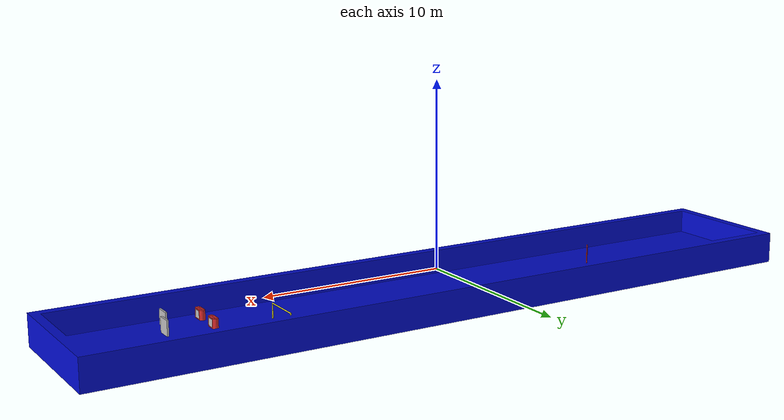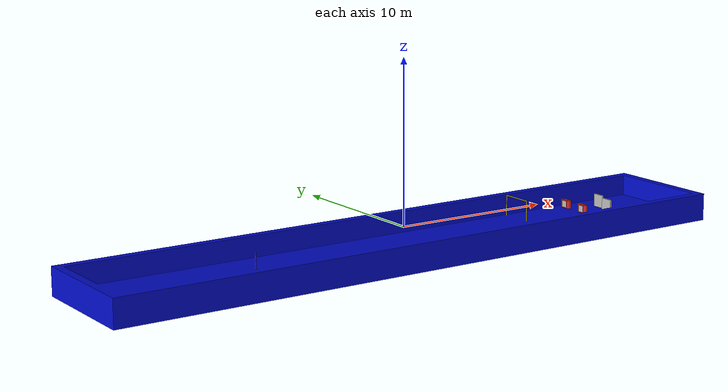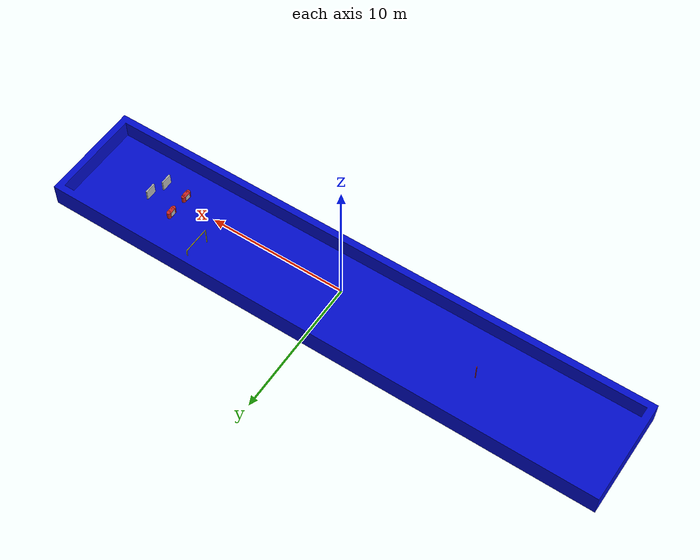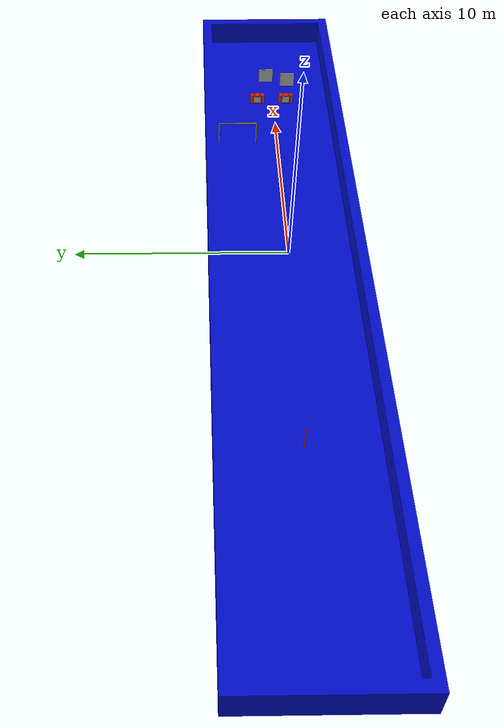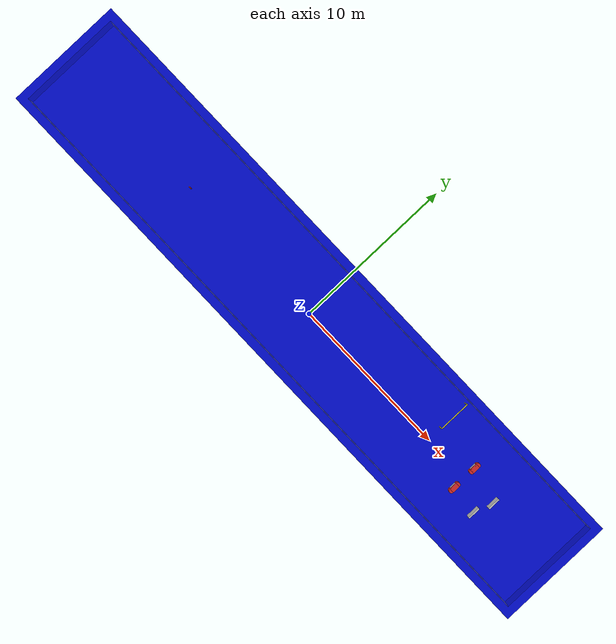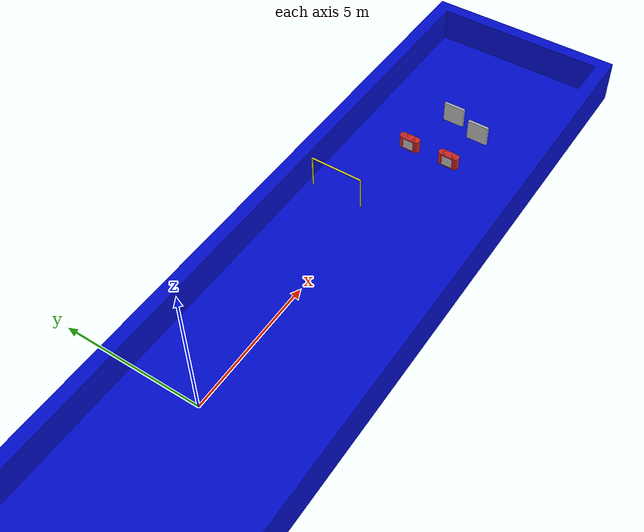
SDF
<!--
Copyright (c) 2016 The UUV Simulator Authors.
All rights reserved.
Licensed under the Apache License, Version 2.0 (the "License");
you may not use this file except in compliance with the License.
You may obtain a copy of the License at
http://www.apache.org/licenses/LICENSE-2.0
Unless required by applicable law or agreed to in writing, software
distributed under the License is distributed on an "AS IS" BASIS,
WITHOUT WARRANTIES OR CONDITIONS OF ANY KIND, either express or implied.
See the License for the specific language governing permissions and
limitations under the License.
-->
<sdf version="1.5">
 <world name="empty_underwater">
  <physics name="default_physics" default="true" type="ode">
   <max_step_size>0.002</max_step_size>
   <real_time_factor>1</real_time_factor>
   <real_time_update_rate>500</real_time_update_rate>
   <ode><solver><type>quick</type><iters>50</iters><sor>0.5</sor></solver></ode>
  </physics>
  <scene>
   <ambient>0.01 0.01 0.01 1.0</ambient>
   <sky><clouds><speed>12</speed></clouds></sky>
   <shadows>1</shadows>
   <fog>
    <color>0.0039 0.26 0.415 1.0</color>
    <type>linear</type>
    <density>0.4</density>
    <start>10</start>
    <end>40</end>
   </fog>
  </scene>
  <spherical_coordinates>
   <latitude_deg>56.71897669633431</latitude_deg>
   <longitude_deg>3.515625</longitude_deg>
  </spherical_coordinates>
  <light type="directional" name="sun1">
   <pose>10 0 10 0 0 0</pose>
   <diffuse>0.25 0.25 0.45 1</diffuse>
   <specular>0.2 0.2 0.2 1</specular>
   <attenuation>
    <range>1000</range>
    <constant>0.9</constant>
    <linear>0.01</linear>
    <quadratic>0.001</quadratic>
   </attenuation>
   <direction>-0.5 0.1 -0.9</direction>
  </light>
  <light type="directional" name="sun2">
   <pose>-10 0 10 0 0 0</pose>
   <diffuse>0.25 0.35 0.45 1</diffuse>
   <specular>0.2 0.2 0.2 1</specular>
   <attenuation>
    <range>1000</range>
    <constant>0.9</constant>
    <linear>0.01</linear>
    <quadratic>0.001</quadratic>
   </attenuation>
   <direction>0.5 0.1 0.9</direction>
  </light>
  <light type="directional" name="sun3">
   <pose>-25 0 5 0 0 0</pose>
   <diffuse>0.25 0.25 0.45 1</diffuse>
   <specular>0.2 0.2 0.2 1</specular>
   <attenuation>
    <range>20</range>
    <constant>0.9</constant>
    <linear>0.01</linear>
    <quadratic>0.001</quadratic>
   </attenuation>
   <direction>0.5 0.1 0.9</direction>
  </light>
  <include><uri>model://cybernetics_pool</uri></include>
  <include><name>gate_side_a</name><pose>10.0 2.0 0.0 0 0 1.57</pose><uri>model://2018/gate</uri></include>
  <include>
   <name>torpedo_targets</name>
   <pose>15.0 -1.8 -0.5 0 0 1.57</pose>
   <uri>model://2018/torpedo_targets</uri>
  </include>
  <include>
   <name>buoy_tommy_gun</name>
   <pose>13.0 -0.8 -0.5 0 0 1.57</pose>
   <uri>model://2018/buoy_tommy_gun</uri>
  </include>
  <include>
   <name>buoy_badge</name>
   <pose>13.0 0.8 -0.5 0 0 1.57</pose>
   <uri>model://2018/buoy_badge</uri>
  </include>
  <include><name>buoys</name><pose>-10.0 0.0 0.0 0 0 0</pose><uri>model://buoys</uri></include>
  <plugin name="underwater_current_plugin" filename="libuuv_underwater_current_ros_plugin.so">
   <namespace>hydrodynamics</namespace>
   <constant_current>
    <topic>current_velocity</topic>
    <velocity><mean>0</mean><min>0</min><max>5</max><mu>0.0</mu><noiseAmp>0.0</noiseAmp></velocity>
    <horizontal_angle>
     <mean>0</mean>
     <min>-3.141592653589793238</min>
     <max>3.141592653589793238</max>
     <mu>0.0</mu>
     <noiseAmp>0.0</noiseAmp>
    </horizontal_angle>
    <vertical_angle>
     <mean>0</mean>
     <min>-3.141592653589793238</min>
     <max>3.141592653589793238</max>
     <mu>0.0</mu>
     <noiseAmp>0.0</noiseAmp>
    </vertical_angle>
   </constant_current>
  </plugin>
  <plugin name="sc_interface" filename="libuuv_sc_ros_interface_plugin.so"/>
 </world>
</sdf>

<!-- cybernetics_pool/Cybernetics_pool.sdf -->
<sdf version='1.5'>

  <model name='transdec_pool'>
    <pose>0 0 0 0 0 0</pose>
    <self_collide> 0 </self_collide>
    <static> 1</static>

    <link name='pool'>
      <pose>0 0 0 0 0 0</pose>
      <visual name='pool_visual'>
        <geometry>
            <mesh><uri>file://cybernetics_pool/cybernetics_pool.dae</uri></mesh>
        </geometry>
        <material>
          <script>
            <uri>file://Media/materials/scripts/sand.material</uri>
            <name>UUVSimulator/SandAndStones</name>
          </script>
          <emissive>
            0.2 0.2 0.2 1.0
          </emissive>
        </material>
      </visual>
      <collision name='pool_collision'>
        <geometry>
            <mesh><uri>file://cybernetics_pool/cybernetics_pool.dae</uri></mesh>
        </geometry>
      </collision>
    </link>

  </model>
</sdf>

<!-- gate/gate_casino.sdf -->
<sdf version='1.5'>
<!--
     Written by Kristoffer Rakstad Solberg, Student
     Copyright (c) 2019 Manta AUV, Vortex NTNU.
     All rights reserved.
-->
  <model name='start_gate'>
    <pose> 0 0 0 0 0 0</pose>
    <self_collide> 0 </self_collide>
    <static>1</static>

    <link name='gate_top'>
      <pose> 0 0 0 0 1.5707 0</pose>
      <visual name='gate_top_vis'>
        <geometry>
          <cylinder>
            <radius>0.0300</radius>
            <length>2.0</length>
          </cylinder>
        </geometry>
        <material>
          <script>
            <uri>file://media/materials/scripts/gazebo.material</uri>
            <name>Gazebo/YellowGlow</name>
          </script>
        </material>
      </visual>
      <collision name='gate_top_collide'>
        <geometry>
          <cylinder>
            <radius>0.0300</radius>
            <length>2.0</length>
          </cylinder>
        </geometry>
      </collision>
    </link>

    <link name='gate_left'>
      <pose>-1.0 0 -0.75 0 0 0</pose>
      <visual name='gate_left_top'>
        <geometry>
          <cylinder>
            <radius>0.0300</radius>
            <length>1.5</length>
          </cylinder>
        </geometry>
        <material>
          <script>
            <uri>file://media/materials/scripts/gazebo.material</uri>
            <name>Gazebo/YellowGlow</name>
          </script>
        </material>
      </visual>
      <collision name='gate_left_collide'>
        <geometry>
          <cylinder>
            <radius>0.0300</radius>
            <length>1.5</length>
          </cylinder>
        </geometry>
      </collision>
    </link>

    <link name='gate_right'>
      <pose>1.0 0 -0.75 0 0 0</pose>
      <visual name='gate_right_top'>
        <geometry>
          <cylinder>
            <radius>0.0300</radius>
            <length>1.5</length>
          </cylinder>
        </geometry>
        <material>
          <script>
            <uri>file://media/materials/scripts/gazebo.material</uri>
            <name>Gazebo/YellowGlow</name>
          </script>
        </material>
      </visual>
      <collision name='gate_right_collide'>
        <geometry>
          <cylinder>
            <radius>0.0300</radius>
            <length>1.5</length>
          </cylinder>
        </geometry>
      </collision>
    </link>

  </model>
</sdf>

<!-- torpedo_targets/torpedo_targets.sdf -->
<sdf version='1.5'>

  <model name='torpedo_targets'>
    <pose>0 0 0 0 0 0</pose>
    <self_collide> 0 </self_collide>
    <static> 1</static>

    <link name='target_gman'>
      <pose>0.8 0.2 0 0 0 0</pose>
      <visual name='target_1'>
        <geometry>
          <box><size>0.8 0.1 0.8</size></box>
        </geometry>
        <material>
            <script>
            <uri>model://2018/torpedo_targets/materials/scripts</uri>
            <uri>model://2018/torpedo_targets/materials/textures</uri>
            <name>TexturedShape/gman</name>
          </script>
        </material>
      </visual>
      <collision name='target_1_collide'>
        <geometry>
          <box><size>0.8 0.1 0.8</size></box>
        </geometry>
      </collision>
    </link>

    <link name='target_bootlegger'>
      <pose>2 -0.2 0 0 0 0</pose>
      <visual name='target_1'>
        <geometry>
          <box><size>0.8 0.1 0.8</size></box>
        </geometry>
        <material>
            <script>
            <uri>model://2018/torpedo_targets/materials/scripts</uri>
            <uri>model://2018/torpedo_targets/materials/textures</uri>
            <name>TexturedShape/bootlegger</name>
          </script>
        </material>
      </visual>
      <collision name='target_1_collide'>
        <geometry>
          <box><size>0.8 0.1 0.8</size></box>
        </geometry>
      </collision>
    </link>
  </model>
</sdf>

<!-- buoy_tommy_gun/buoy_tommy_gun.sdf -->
<sdf version='1.5'>
<!--
     Written by Kristoffer Rakstad Solberg, Student
     Copyright (c) 2019 Manta AUV, Vortex NTNU.
     All rights reserved.
-->
  <model name='buoy_tommy_gate'>
    <pose> 0 0 0 0 0 0</pose>
    <self_collide> 0 </self_collide>
    <static>1</static>

    <link name='buoy_base'>
      <pose> 0 0 0 0 0 0</pose>
      <visual name='gate_mid_vis'>
        <geometry>
          <box>
            <size>0.5 0.3 0.5</size>
          </box>
        </geometry>
        <material>
          <script>
            <uri>file://media/materials/scripts/gazebo.material</uri>
            <name>Gazebo/Red</name>
          </script>
        </material>
      </visual>
      <collision name='buoy_collide'>
        <geometry>
          <box>
            <size>0.5 0.3 0.5</size>
          </box>
        </geometry>
      </collision>
    </link>

    <link name='buoy_side_left'>
      <pose> -0.25 0 0 0 0 0</pose>
      <visual name='gate_side_left_vis'>
        <geometry>
          <cylinder>
            <radius>0.15</radius>
            <length>0.5</length>
          </cylinder>
        </geometry>
        <material>
          <script>
            <uri>file://media/materials/scripts/gazebo.material</uri>
            <name>Gazebo/Red</name>
          </script>
        </material>
      </visual>
      <collision name='buoy_collide_side_left'>
        <geometry>
          <cylinder>
            <radius>0.15</radius>
            <length>0.5</length>
          </cylinder>
        </geometry>
      </collision>
    </link>

    <link name='buoy_side_right'>
      <pose> 0.25 0 0 0 0 0</pose>
      <visual name='gate_side_right_vis'>
        <geometry>
          <cylinder>
            <radius>0.15</radius>
            <length>0.5</length>
          </cylinder>
        </geometry>
        <material>
          <script>
            <uri>file://media/materials/scripts/gazebo.material</uri>
            <name>Gazebo/Red</name>
          </script>
        </material>
      </visual>
      <collision name='buoy_collide_side_right'>
        <geometry>
          <cylinder>
            <radius>0.15</radius>
            <length>0.5</length>
          </cylinder>
        </geometry>
      </collision>
    </link>

    <link name='box_tommy_gun'>
      <pose> 0 0.15 0 0 0 0</pose>
      <visual name='box_tommy_gun_vis'>
        <geometry>
          <box>
            <size>0.4 0.01 0.4</size>
          </box>
        </geometry>
        <material>
          <script>
            <uri>model://2018/buoy_tommy_gun/materials/scripts</uri>
            <uri>model://2018/buoy_tommy_gun/materials/textures</uri>
            <name>TexturedShape/tommy_gun</name>
          </script>
        </material>
      </visual>
    </link>

    <link name='box_tommy_gun2'>
      <pose> 0 -0.15 0 0 0 0</pose>
      <visual name='box_tommy_gun2_vis'>
        <geometry>
          <box>
            <size>0.4 0.01 0.4</size>
          </box>
        </geometry>
        <material>
          <script>
            <uri>model://2018/buoy_tommy_gun/materials/scripts</uri>
            <uri>model://2018/buoy_tommy_gun/materials/textures</uri>
            <name>TexturedShape/tommy_gun</name>
          </script>
        </material>
      </visual>
    </link>

  </model>
</sdf>

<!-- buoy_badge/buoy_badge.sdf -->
<sdf version='1.5'>
<!--
     Written by Kristoffer Rakstad Solberg, Student
     Copyright (c) 2019 Manta AUV, Vortex NTNU.
     All rights reserved.
-->
  <model name='buoy_badge'>
    <pose> 0 0 0 0 0 0</pose>
    <self_collide> 0 </self_collide>
    <static>1</static>

    <link name='buoy_base'>
      <pose> 0 0 0 0 0 0</pose>
      <visual name='gate_mid_vis'>
        <geometry>
          <box>
            <size>0.5 0.3 0.5</size>
          </box>
        </geometry>
        <material>
          <script>
            <uri>file://media/materials/scripts/gazebo.material</uri>
            <name>Gazebo/Red</name>
          </script>
        </material>
      </visual>
      <collision name='buoy_collide'>
        <geometry>
          <box>
            <size>0.5 0.3 0.5</size>
          </box>
        </geometry>
      </collision>
    </link>

    <link name='buoy_side_left'>
      <pose> -0.25 0 0 0 0 0</pose>
      <visual name='gate_side_left_vis'>
        <geometry>
          <cylinder>
            <radius>0.15</radius>
            <length>0.5</length>
          </cylinder>
        </geometry>
        <material>
          <script>
            <uri>file://media/materials/scripts/gazebo.material</uri>
            <name>Gazebo/Red</name>
          </script>
        </material>
      </visual>
      <collision name='buoy_collide_side_left'>
        <geometry>
          <cylinder>
            <radius>0.15</radius>
            <length>0.5</length>
          </cylinder>
        </geometry>
      </collision>
    </link>

    <link name='buoy_side_right'>
      <pose> 0.25 0 0 0 0 0</pose>
      <visual name='gate_side_right_vis'>
        <geometry>
          <cylinder>
            <radius>0.15</radius>
            <length>0.5</length>
          </cylinder>
        </geometry>
        <material>
          <script>
            <uri>file://media/materials/scripts/gazebo.material</uri>
            <name>Gazebo/Red</name>
          </script>
        </material>
      </visual>
      <collision name='buoy_collide_side_right'>
        <geometry>
          <cylinder>
            <radius>0.15</radius>
            <length>0.5</length>
          </cylinder>
        </geometry>
      </collision>
    </link>

    <link name='box_badge'>
      <pose> 0 0.15 0 0 0 0</pose>
      <visual name='box_badge_vis'>
        <geometry>
          <box>
            <size>0.4 0.01 0.4</size>
          </box>
        </geometry>
        <material>
          <script>
            <uri>model://2018/buoy_badge/materials/scripts</uri>
            <uri>model://2018/buoy_badge/materials/textures</uri>
            <name>TexturedShape/badge</name>
          </script>
        </material>
      </visual>
    </link>

    <link name='box_badge2'>
      <pose> 0 -0.15 0 0 0 0</pose>
      <visual name='box_badge2_vis'>
        <geometry>
          <box>
            <size>0.4 0.01 0.4</size>
          </box>
        </geometry>
        <material>
          <script>
            <uri>model://2018/buoy_badge/materials/scripts</uri>
            <uri>model://2018/buoy_badge/materials/textures</uri>
            <name>TexturedShape/badge</name>
          </script>
        </material>
      </visual>
    </link>

  </model>
</sdf>

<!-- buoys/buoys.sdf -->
<sdf version='1.5'>

  <model name='buoys'>
    <pose>0 0 0 0 0 0</pose>
    <self_collide> 0 </self_collide>
    <static> 1</static>

    <link name='red_rod'>
        <pose>0 0 -0.7 0 0 0</pose>
        <visual name='red_rod_vis'>
          <geometry>
            <cylinder>
              <radius>0.03</radius>
              <length>1.3</length>
            </cylinder>
          </geometry>
        <material>
          <script>
            <uri>file://media/materials/scripts/gazebo.material</uri>
            <name>Gazebo/RedBright</name>
          </script>
          <diffuse>0.3 0.3 0.3 1</diffuse>
        </material>
        </visual>
        <collision name='red_rod_collide'>
            <geometry>
                <cylinder>
                    <radius>0.03</radius>
                    <length>1.3</length>
                </cylinder>
            </geometry>
        </collision>
    </link>

  </model>
</sdf>
